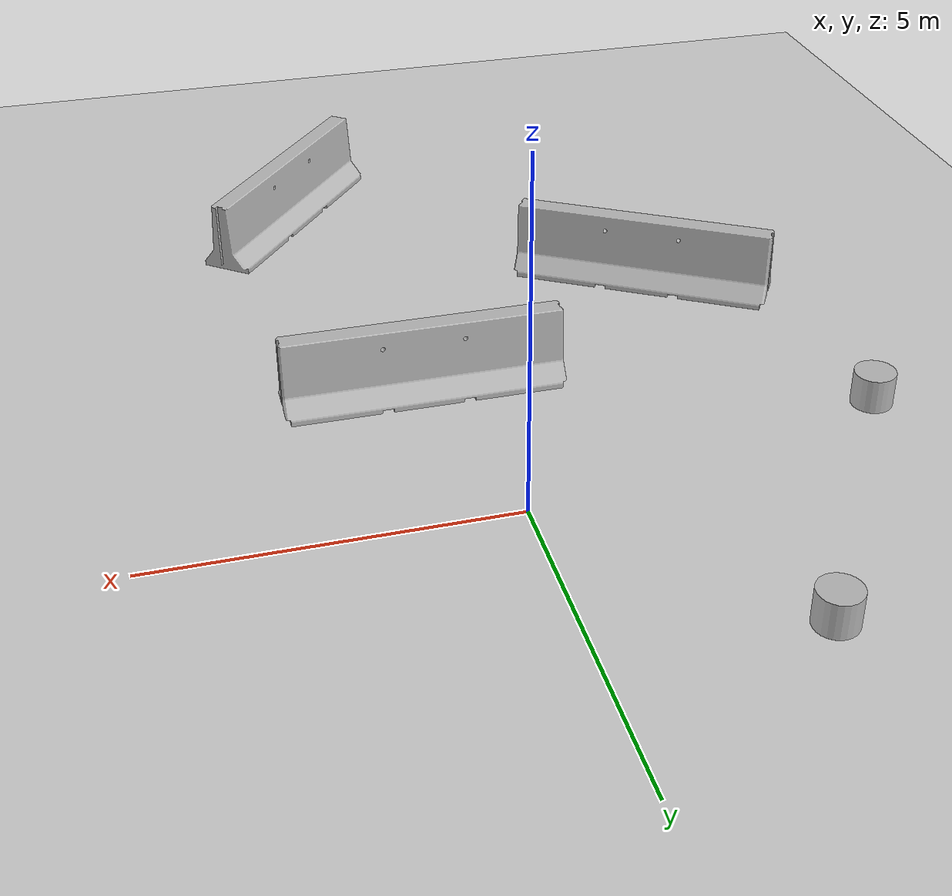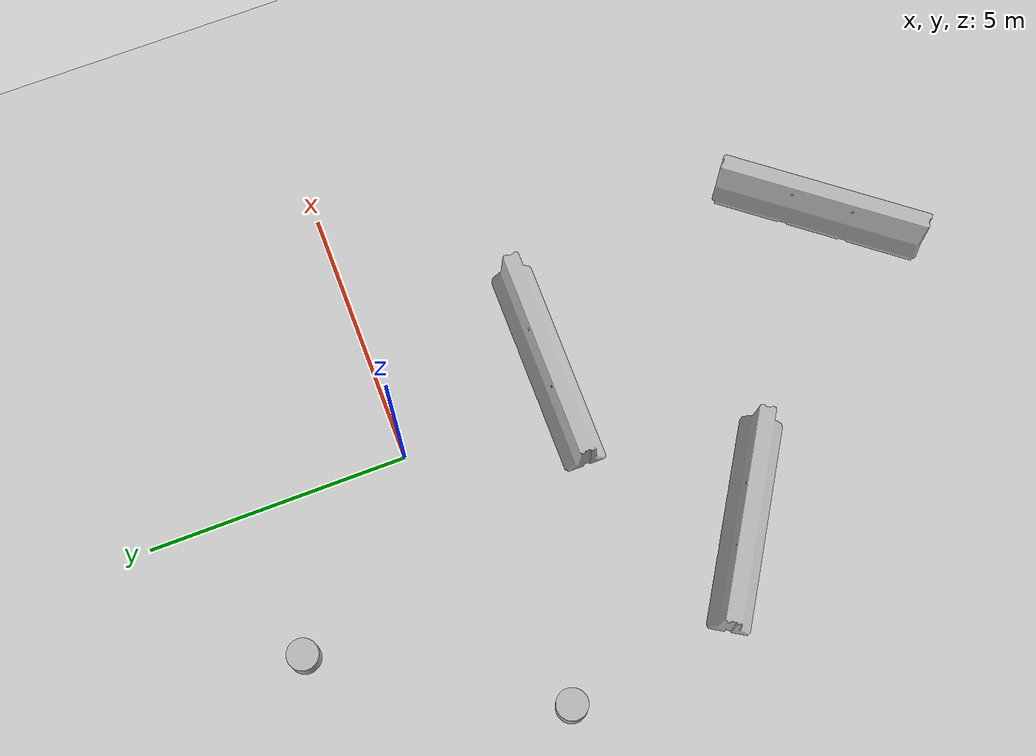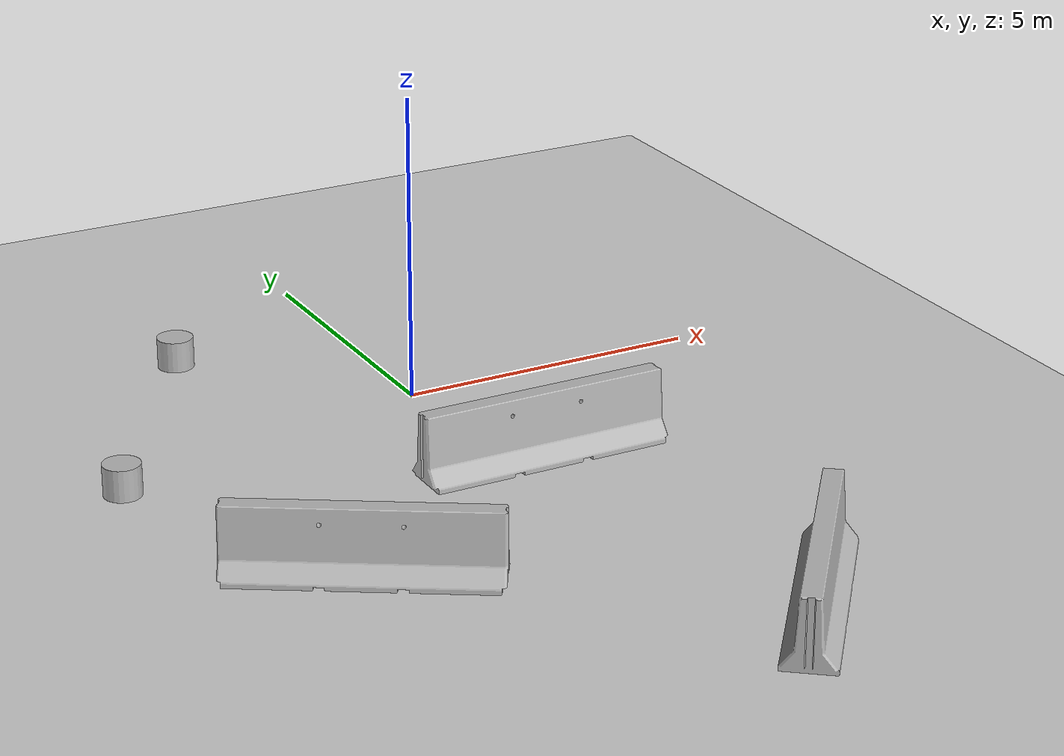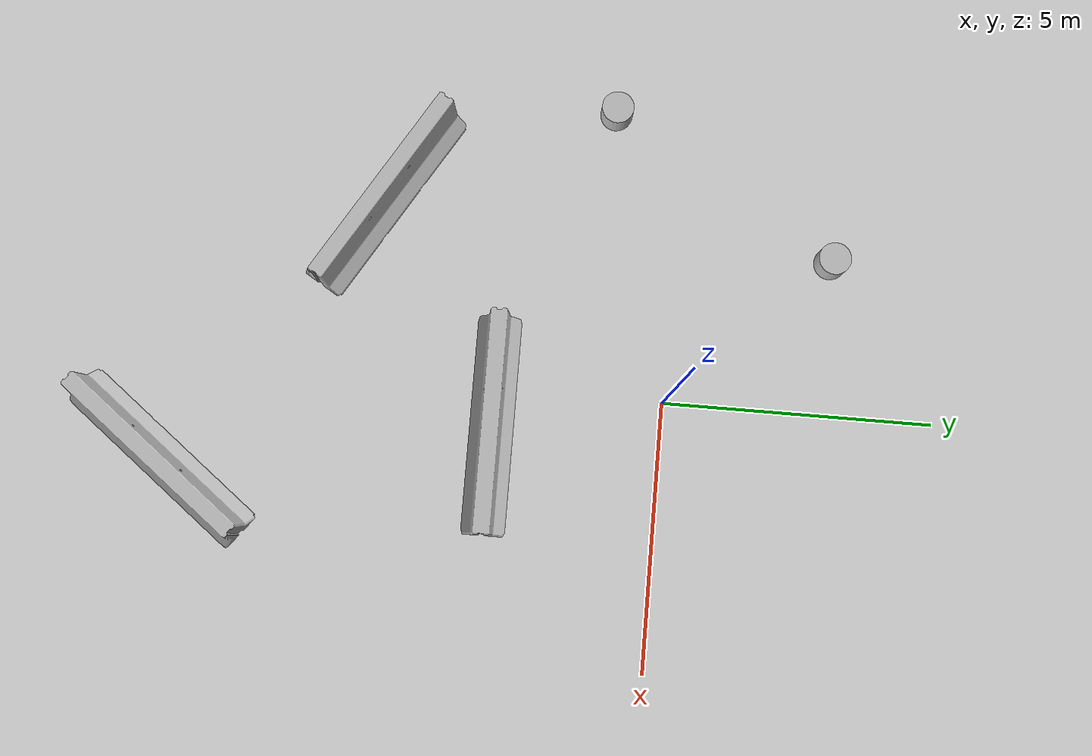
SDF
<sdf version="1.6">
 <world name="default">
  <model name="igvc_basic_ground">
   <static>1</static>
   <link name="link">
    <collision name="collision">
     <geometry><plane><normal>0 0 1</normal><size>50 50</size></plane></geometry>
     <surface><friction><ode><mu>100</mu><mu2>50</mu2></ode></friction></surface>
    </collision>
    <visual name="visual">
     <cast_shadows>0</cast_shadows>
     <geometry><plane><normal>0 0 1</normal><size>50 50</size></plane></geometry>
     <material>
      <script>
       <uri>model://igvc_basic_ground/materials/scripts</uri>
       <uri>model://igvc_basic_ground/materials/textures</uri>
       <name>igvc_basic_ground/Image</name>
      </script>
     </material>
    </visual>
   </link>
  </model>
  <light name="sun" type="directional">
   <pose>0 0 10 0 -0 0</pose>
   <diffuse>0.8 0.8 0.8 1</diffuse>
   <specular>0.2 0.2 0.2 1</specular>
   <attenuation>
    <range>1000</range>
    <constant>0.9</constant>
    <linear>0.01</linear>
    <quadratic>0.001</quadratic>
   </attenuation>
   <direction>-0.5 0.1 -0.9</direction>
  </light>
  <physics name="default_physics" default="0" type="ode">
   <max_step_size>0.001</max_step_size>
   <real_time_factor>5</real_time_factor>
   <real_time_update_rate>1000</real_time_update_rate>
  </physics>
  <gravity>0 0 -9.8</gravity>
  <scene><ambient>0.4 0.4 0.4 1</ambient><background>0.7 0.7 0.7 1</background><shadows>1</shadows></scene>
  <spherical_coordinates>
   <surface_model>EARTH_WGS84</surface_model>
   <latitude_deg>0</latitude_deg>
   <longitude_deg>0</longitude_deg>
   <elevation>0</elevation>
   <heading_deg>0</heading_deg>
  </spherical_coordinates>
  <magnetic_field>6e-06 2.3e-05 -4.2e-05</magnetic_field>
  <atmosphere type="adiabatic"/>
  <model name="Construction Barrel">
   <link name="link">
    <inertial>
     <pose>0 0 0.5 0 -0 0</pose>
     <mass>500</mass>
     <inertia><ixx>51.2096</ixx><iyy>51.2096</iyy><izz>25</izz><ixy>0</ixy><ixz>0</ixz><iyz>0</iyz></inertia>
    </inertial>
    <collision name="collision">
     <geometry><cylinder><radius>0.3</radius><length>1</length></cylinder></geometry>
    </collision>
    <visual name="visual">
     <geometry><cylinder><radius>0.3</radius><length>1</length></cylinder></geometry>
     <material>
      <script>
       <uri>model://construction_barrel/materials/scripts</uri>
       <uri>model://construction_barrel/materials/textures</uri>
       <name>construction_barrel/Image</name>
      </script>
     </material>
    </visual>
    <velocity_decay><linear>0</linear><angular>0</angular></velocity_decay>
   </link>
   <pose>-2.88469 2.95871 0 0 -0 0</pose>
   <static>1</static>
  </model>
  <model name="jersey_barrier">
   <static>1</static>
   <link name="link">
    <visual name="visual">
     <geometry><mesh><uri>model://jersey_barrier/meshes/jersey_barrier.dae</uri></mesh></geometry>
    </visual>
    <collision name="upright">
     <pose>0 0 0.5715 0 -0 0</pose>
     <geometry><box><size>4.06542 0.3063 1.143</size></box></geometry>
    </collision>
    <collision name="base">
     <pose>0 0 0.032258 0 -0 0</pose>
     <geometry><box><size>4.06542 0.8107 0.064516</size></box></geometry>
    </collision>
    <collision name="base2">
     <pose>0 0 0.1 0 -0 0</pose>
     <geometry><box><size>4.06542 0.65 0.1</size></box></geometry>
    </collision>
    <collision name="base3">
     <pose>0 0 0.2 0 -0 0</pose>
     <geometry><box><size>4.06542 0.5 0.1</size></box></geometry>
    </collision>
    <collision name="left-angle">
     <pose>0 -0.224 0.2401 0.9 -0 0</pose>
     <geometry><box><size>4.06542 0.5 0.064516</size></box></geometry>
    </collision>
    <collision name="right-angle">
     <pose>0 0.224 0.2401 -0.9 0 0</pose>
     <geometry><box><size>4.06542 0.5 0.064516</size></box></geometry>
    </collision>
   </link>
   <pose>0.681992 -3.11687 0 0 -0 0</pose>
  </model>
  <model name="Construction Barrel_0">
   <link name="link">
    <inertial>
     <pose>0 0 0.5 0 -0 0</pose>
     <mass>500</mass>
     <inertia><ixx>51.2096</ixx><iyy>51.2096</iyy><izz>25</izz><ixy>0</ixy><ixz>0</ixz><iyz>0</iyz></inertia>
    </inertial>
    <collision name="collision">
     <geometry><cylinder><radius>0.3</radius><length>1</length></cylinder></geometry>
    </collision>
    <visual name="visual">
     <geometry><cylinder><radius>0.3</radius><length>1</length></cylinder></geometry>
     <material>
      <script>
       <uri>model://construction_barrel/materials/scripts</uri>
       <uri>model://construction_barrel/materials/textures</uri>
       <name>construction_barrel/Image</name>
      </script>
     </material>
    </visual>
    <velocity_decay><linear>0</linear><angular>0</angular></velocity_decay>
   </link>
   <pose>-5.42193 -1.24801 0 0 -0 0</pose>
   <static>1</static>
  </model>
  <model name="jersey_barrier_0">
   <static>1</static>
   <link name="link">
    <visual name="visual">
     <geometry><mesh><uri>model://jersey_barrier/meshes/jersey_barrier.dae</uri></mesh></geometry>
    </visual>
    <collision name="upright">
     <pose>0 0 0.5715 0 -0 0</pose>
     <geometry><box><size>4.06542 0.3063 1.143</size></box></geometry>
    </collision>
    <collision name="base">
     <pose>0 0 0.032258 0 -0 0</pose>
     <geometry><box><size>4.06542 0.8107 0.064516</size></box></geometry>
    </collision>
    <collision name="base2">
     <pose>0 0 0.1 0 -0 0</pose>
     <geometry><box><size>4.06542 0.65 0.1</size></box></geometry>
    </collision>
    <collision name="base3">
     <pose>0 0 0.2 0 -0 0</pose>
     <geometry><box><size>4.06542 0.5 0.1</size></box></geometry>
    </collision>
    <collision name="left-angle">
     <pose>0 -0.224 0.2401 0.9 -0 0</pose>
     <geometry><box><size>4.06542 0.5 0.064516</size></box></geometry>
    </collision>
    <collision name="right-angle">
     <pose>0 0.224 0.2401 -0.9 0 0</pose>
     <geometry><box><size>4.06542 0.5 0.064516</size></box></geometry>
    </collision>
   </link>
   <pose>-3.43377 -5.44679 0 0 0 -0.546223</pose>
  </model>
  <model name="jersey_barrier_1">
   <static>1</static>
   <link name="link">
    <visual name="visual">
     <geometry><mesh><uri>model://jersey_barrier/meshes/jersey_barrier.dae</uri></mesh></geometry>
    </visual>
    <collision name="upright">
     <pose>0 0 0.5715 0 -0 0</pose>
     <geometry><box><size>4.06542 0.3063 1.143</size></box></geometry>
    </collision>
    <collision name="base">
     <pose>0 0 0.032258 0 -0 0</pose>
     <geometry><box><size>4.06542 0.8107 0.064516</size></box></geometry>
    </collision>
    <collision name="base2">
     <pose>0 0 0.1 0 -0 0</pose>
     <geometry><box><size>4.06542 0.65 0.1</size></box></geometry>
    </collision>
    <collision name="base3">
     <pose>0 0 0.2 0 -0 0</pose>
     <geometry><box><size>4.06542 0.5 0.1</size></box></geometry>
    </collision>
    <collision name="left-angle">
     <pose>0 -0.224 0.2401 0.9 -0 0</pose>
     <geometry><box><size>4.06542 0.5 0.064516</size></box></geometry>
    </collision>
    <collision name="right-angle">
     <pose>0 0.224 0.2401 -0.9 0 0</pose>
     <geometry><box><size>4.06542 0.5 0.064516</size></box></geometry>
    </collision>
   </link>
   <pose>1.77558 -9.12237 0 0 -0 0.906664</pose>
  </model>
 </world>
</sdf>
